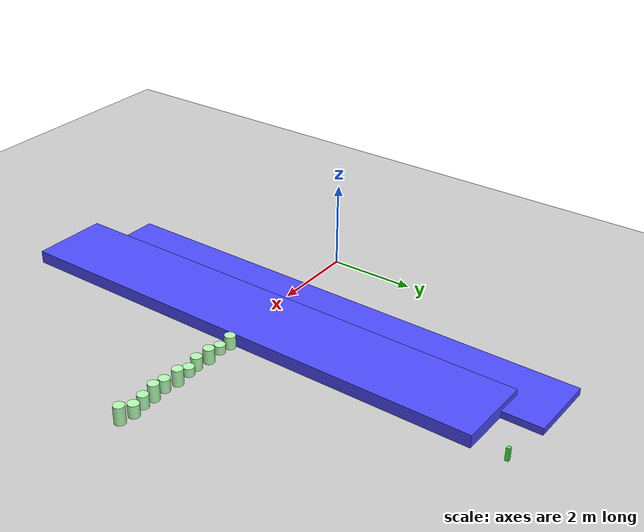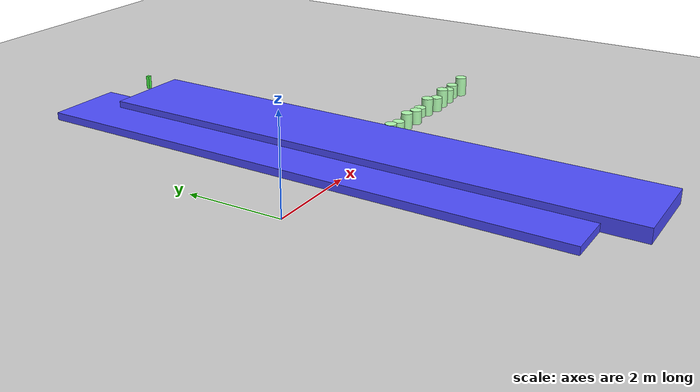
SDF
<sdf version="1.7">
 <world name="default">
  <model name="ground_plane">
   <static>1</static>
   <link name="link">
    <collision name="collision">
     <geometry><plane><normal>0 0 1</normal><size>100 100</size></plane></geometry>
     <surface><friction><ode><mu>100</mu><mu2>50</mu2></ode></friction></surface>
    </collision>
    <visual name="visual">
     <cast_shadows>0</cast_shadows>
     <geometry><plane><normal>0 0 1</normal><size>100 100</size></plane></geometry>
     <material>
      <script><uri>file://media/materials/scripts/gazebo.material</uri><name>Gazebo/Grey</name></script>
     </material>
    </visual>
   </link>
  </model>
  <model name="ban_400_80_30_clone_clone">
   <link name="link">
    <inertial>
     <mass>1</mass>
     <inertia>
      <ixx>0.166667</ixx>
      <ixy>0</ixy>
      <ixz>0</ixz>
      <iyy>0.166667</iyy>
      <iyz>0</iyz>
      <izz>0.166667</izz>
     </inertia>
    </inertial>
    <visual name="visual">
     <geometry><box><size>11.703 1.83242 0.3</size></box></geometry>
     <material>
      <script><name>Gazebo/Grey</name><uri>file://media/materials/scripts/gazebo.material</uri></script>
      <shader type="pixel"><normal_map>__default__</normal_map></shader>
      <ambient>0.3 0.3 1 1</ambient>
      <diffuse>0.7 0.7 0.7 1</diffuse>
      <specular>0.01 0.01 0.01 1</specular>
      <emissive>0 0 0 1</emissive>
     </material>
    </visual>
    <collision name="collision">
     <geometry><box><size>11.703 1.83242 0.3</size></box></geometry>
     <surface>
      <friction>
       <ode><mu>1</mu><mu2>1</mu2><fdir1>0 0 0</fdir1><slip1>0</slip1><slip2>0</slip2></ode>
       <torsional>
        <coefficient>1</coefficient>
        <patch_radius>0</patch_radius>
        <surface_radius>0</surface_radius>
        <use_patch_radius>1</use_patch_radius>
        <ode><slip>0</slip></ode>
       </torsional>
      </friction>
      <bounce><restitution_coefficient>0</restitution_coefficient><threshold>1e+06</threshold></bounce>
      <contact>
       <collide_without_contact>0</collide_without_contact>
       <collide_without_contact_bitmask>1</collide_without_contact_bitmask>
       <collide_bitmask>1</collide_bitmask>
       <ode>
        <soft_cfm>0</soft_cfm>
        <soft_erp>0.2</soft_erp>
        <kp>1e+13</kp>
        <kd>1</kd>
        <max_vel>0.01</max_vel>
        <min_depth>0</min_depth>
       </ode>
       <bullet>
        <split_impulse>1</split_impulse>
        <split_impulse_penetration_threshold>-0.01</split_impulse_penetration_threshold>
        <soft_cfm>0</soft_cfm>
        <soft_erp>0.2</soft_erp>
        <kp>1e+13</kp>
        <kd>1</kd>
       </bullet>
      </contact>
     </surface>
    </collision>
   </link>
   <static>1</static>
   <pose>3.376 0.164957 0.141155 0 -0 1.55763</pose>
  </model>
  <model name="mhz_8_30_clone">
   <link name="link">
    <inertial>
     <mass>1</mass>
     <inertia>
      <ixx>0.166667</ixx>
      <ixy>0</ixy>
      <ixz>0</ixz>
      <iyy>0.166667</iyy>
      <iyz>0</iyz>
      <izz>0.166667</izz>
     </inertia>
    </inertial>
    <visual name="visual">
     <geometry><box><size>0.08 0.08 0.3</size></box></geometry>
     <material>
      <script><name>Gazebo/Grey</name><uri>file://media/materials/scripts/gazebo.material</uri></script>
      <shader type="pixel"><normal_map>__default__</normal_map></shader>
      <ambient>0.3 1 0.3 1</ambient>
      <diffuse>0.7 0.7 0.7 1</diffuse>
      <specular>0.01 0.01 0.01 1</specular>
      <emissive>0 0 0 1</emissive>
     </material>
    </visual>
    <collision name="collision">
     <geometry><box><size>0.08 0.08 0.3</size></box></geometry>
     <surface>
      <friction>
       <ode><mu>1</mu><mu2>1</mu2><fdir1>0 0 0</fdir1><slip1>0</slip1><slip2>0</slip2></ode>
       <torsional>
        <coefficient>1</coefficient>
        <patch_radius>0</patch_radius>
        <surface_radius>0</surface_radius>
        <use_patch_radius>1</use_patch_radius>
        <ode><slip>0</slip></ode>
       </torsional>
      </friction>
      <bounce><restitution_coefficient>0</restitution_coefficient><threshold>1e+06</threshold></bounce>
      <contact>
       <collide_without_contact>0</collide_without_contact>
       <collide_without_contact_bitmask>1</collide_without_contact_bitmask>
       <collide_bitmask>1</collide_bitmask>
       <ode>
        <soft_cfm>0</soft_cfm>
        <soft_erp>0.2</soft_erp>
        <kp>1e+13</kp>
        <kd>1</kd>
        <max_vel>0.01</max_vel>
        <min_depth>0</min_depth>
       </ode>
       <bullet>
        <split_impulse>1</split_impulse>
        <split_impulse_penetration_threshold>-0.01</split_impulse_penetration_threshold>
        <soft_cfm>0</soft_cfm>
        <soft_erp>0.2</soft_erp>
        <kp>1e+13</kp>
        <kd>1</kd>
       </bullet>
      </contact>
     </surface>
    </collision>
   </link>
   <static>1</static>
   <pose>4.25594 6.71166 0.134436 0 -0 0</pose>
  </model>
  <model name="mhz_y_25_30_clone_13_clone_clone_9_clone">
   <link name="link">
    <inertial>
     <mass>1</mass>
     <inertia><ixx>0.145833</ixx><ixy>0</ixy><ixz>0</ixz><iyy>0.145833</iyy><iyz>0</iyz><izz>0.125</izz></inertia>
    </inertial>
    <visual name="visual">
     <geometry><cylinder><radius>0.125</radius><length>0.3</length></cylinder></geometry>
     <material>
      <script><name>Gazebo/Grey</name><uri>file://media/materials/scripts/gazebo.material</uri></script>
      <shader type="pixel"><normal_map>__default__</normal_map></shader>
      <ambient>0 1 0 0</ambient>
      <diffuse>0.7 1 0.7 1</diffuse>
      <specular>0.01 0.01 0.01 1</specular>
      <emissive>0 0 0 1</emissive>
     </material>
    </visual>
    <collision name="collision">
     <geometry><cylinder><radius>0.125</radius><length>0.3</length></cylinder></geometry>
     <surface>
      <friction>
       <ode><mu>1</mu><mu2>1</mu2><fdir1>0 0 0</fdir1><slip1>0</slip1><slip2>0</slip2></ode>
       <torsional>
        <coefficient>1</coefficient>
        <patch_radius>0</patch_radius>
        <surface_radius>0</surface_radius>
        <use_patch_radius>1</use_patch_radius>
        <ode><slip>0</slip></ode>
       </torsional>
      </friction>
      <bounce><restitution_coefficient>0</restitution_coefficient><threshold>1e+06</threshold></bounce>
      <contact>
       <collide_without_contact>0</collide_without_contact>
       <collide_without_contact_bitmask>1</collide_without_contact_bitmask>
       <collide_bitmask>1</collide_bitmask>
       <ode>
        <soft_cfm>0</soft_cfm>
        <soft_erp>0.2</soft_erp>
        <kp>1e+13</kp>
        <kd>1</kd>
        <max_vel>0.01</max_vel>
        <min_depth>0</min_depth>
       </ode>
       <bullet>
        <split_impulse>1</split_impulse>
        <split_impulse_penetration_threshold>-0.01</split_impulse_penetration_threshold>
        <soft_cfm>0</soft_cfm>
        <soft_erp>0.2</soft_erp>
        <kp>1e+13</kp>
        <kd>1</kd>
       </bullet>
      </contact>
     </surface>
    </collision>
   </link>
   <static>1</static>
   <pose>4.3916 0.246906 0.14679 0 -0 0</pose>
  </model>
  <model name="mhz_y_25_30_clone_13_clone_clone_9_clone_2">
   <link name="link">
    <inertial>
     <mass>1</mass>
     <inertia><ixx>0.145833</ixx><ixy>0</ixy><ixz>0</ixz><iyy>0.145833</iyy><iyz>0</iyz><izz>0.125</izz></inertia>
    </inertial>
    <visual name="visual">
     <geometry><cylinder><radius>0.125</radius><length>0.195258</length></cylinder></geometry>
     <material>
      <script><name>Gazebo/Grey</name><uri>file://media/materials/scripts/gazebo.material</uri></script>
      <shader type="pixel"><normal_map>__default__</normal_map></shader>
      <ambient>0 1 0 0</ambient>
      <diffuse>0.7 1 0.7 1</diffuse>
      <specular>0.01 0.01 0.01 1</specular>
      <emissive>0 0 0 1</emissive>
     </material>
    </visual>
    <collision name="collision">
     <geometry><cylinder><radius>0.125</radius><length>0.195258</length></cylinder></geometry>
     <surface>
      <friction>
       <ode><mu>1</mu><mu2>1</mu2><fdir1>0 0 0</fdir1><slip1>0</slip1><slip2>0</slip2></ode>
       <torsional>
        <coefficient>1</coefficient>
        <patch_radius>0</patch_radius>
        <surface_radius>0</surface_radius>
        <use_patch_radius>1</use_patch_radius>
        <ode><slip>0</slip></ode>
       </torsional>
      </friction>
      <bounce><restitution_coefficient>0</restitution_coefficient><threshold>1e+06</threshold></bounce>
      <contact>
       <collide_without_contact>0</collide_without_contact>
       <collide_without_contact_bitmask>1</collide_without_contact_bitmask>
       <collide_bitmask>1</collide_bitmask>
       <ode>
        <soft_cfm>0</soft_cfm>
        <soft_erp>0.2</soft_erp>
        <kp>1e+13</kp>
        <kd>1</kd>
        <max_vel>0.01</max_vel>
        <min_depth>0</min_depth>
       </ode>
       <bullet>
        <split_impulse>1</split_impulse>
        <split_impulse_penetration_threshold>-0.01</split_impulse_penetration_threshold>
        <soft_cfm>0</soft_cfm>
        <soft_erp>0.2</soft_erp>
        <kp>1e+13</kp>
        <kd>1</kd>
       </bullet>
      </contact>
     </surface>
    </collision>
   </link>
   <static>1</static>
   <pose>4.72896 0.241123 0.14679 0 -0 0</pose>
  </model>
  <model name="mhz_y_25_30_clone_13_clone_clone_9_clone_4">
   <link name="link">
    <inertial>
     <mass>1</mass>
     <inertia><ixx>0.145833</ixx><ixy>0</ixy><ixz>0</ixz><iyy>0.145833</iyy><iyz>0</iyz><izz>0.125</izz></inertia>
    </inertial>
    <visual name="visual">
     <geometry><cylinder><radius>0.125</radius><length>0.368013</length></cylinder></geometry>
     <material>
      <script><name>Gazebo/Grey</name><uri>file://media/materials/scripts/gazebo.material</uri></script>
      <shader type="pixel"><normal_map>__default__</normal_map></shader>
      <ambient>0 1 0 0</ambient>
      <diffuse>0.7 1 0.7 1</diffuse>
      <specular>0.01 0.01 0.01 1</specular>
      <emissive>0 0 0 1</emissive>
     </material>
    </visual>
    <collision name="collision">
     <geometry><cylinder><radius>0.125</radius><length>0.368013</length></cylinder></geometry>
     <surface>
      <friction>
       <ode><mu>1</mu><mu2>1</mu2><fdir1>0 0 0</fdir1><slip1>0</slip1><slip2>0</slip2></ode>
       <torsional>
        <coefficient>1</coefficient>
        <patch_radius>0</patch_radius>
        <surface_radius>0</surface_radius>
        <use_patch_radius>1</use_patch_radius>
        <ode><slip>0</slip></ode>
       </torsional>
      </friction>
      <bounce><restitution_coefficient>0</restitution_coefficient><threshold>1e+06</threshold></bounce>
      <contact>
       <collide_without_contact>0</collide_without_contact>
       <collide_without_contact_bitmask>1</collide_without_contact_bitmask>
       <collide_bitmask>1</collide_bitmask>
       <ode>
        <soft_cfm>0</soft_cfm>
        <soft_erp>0.2</soft_erp>
        <kp>1e+13</kp>
        <kd>1</kd>
        <max_vel>0.01</max_vel>
        <min_depth>0</min_depth>
       </ode>
       <bullet>
        <split_impulse>1</split_impulse>
        <split_impulse_penetration_threshold>-0.01</split_impulse_penetration_threshold>
        <soft_cfm>0</soft_cfm>
        <soft_erp>0.2</soft_erp>
        <kp>1e+13</kp>
        <kd>1</kd>
       </bullet>
      </contact>
     </surface>
    </collision>
   </link>
   <static>1</static>
   <pose>5.07114 0.228722 0.14679 0 -0 0</pose>
  </model>
  <model name="mhz_y_25_30_clone_13_clone_clone_9_clone_6">
   <link name="link">
    <inertial>
     <mass>1</mass>
     <inertia><ixx>0.145833</ixx><ixy>0</ixy><ixz>0</ixz><iyy>0.145833</iyy><iyz>0</iyz><izz>0.125</izz></inertia>
    </inertial>
    <visual name="visual">
     <geometry><cylinder><radius>0.125</radius><length>0.3</length></cylinder></geometry>
     <material>
      <script><name>Gazebo/Grey</name><uri>file://media/materials/scripts/gazebo.material</uri></script>
      <shader type="pixel"><normal_map>__default__</normal_map></shader>
      <ambient>0 1 0 0</ambient>
      <diffuse>0.7 1 0.7 1</diffuse>
      <specular>0.01 0.01 0.01 1</specular>
      <emissive>0 0 0 1</emissive>
     </material>
    </visual>
    <collision name="collision">
     <geometry><cylinder><radius>0.125</radius><length>0.3</length></cylinder></geometry>
     <surface>
      <friction>
       <ode><mu>1</mu><mu2>1</mu2><fdir1>0 0 0</fdir1><slip1>0</slip1><slip2>0</slip2></ode>
       <torsional>
        <coefficient>1</coefficient>
        <patch_radius>0</patch_radius>
        <surface_radius>0</surface_radius>
        <use_patch_radius>1</use_patch_radius>
        <ode><slip>0</slip></ode>
       </torsional>
      </friction>
      <bounce><restitution_coefficient>0</restitution_coefficient><threshold>1e+06</threshold></bounce>
      <contact>
       <collide_without_contact>0</collide_without_contact>
       <collide_without_contact_bitmask>1</collide_without_contact_bitmask>
       <collide_bitmask>1</collide_bitmask>
       <ode>
        <soft_cfm>0</soft_cfm>
        <soft_erp>0.2</soft_erp>
        <kp>1e+13</kp>
        <kd>1</kd>
        <max_vel>0.01</max_vel>
        <min_depth>0</min_depth>
       </ode>
       <bullet>
        <split_impulse>1</split_impulse>
        <split_impulse_penetration_threshold>-0.01</split_impulse_penetration_threshold>
        <soft_cfm>0</soft_cfm>
        <soft_erp>0.2</soft_erp>
        <kp>1e+13</kp>
        <kd>1</kd>
       </bullet>
      </contact>
     </surface>
    </collision>
   </link>
   <static>1</static>
   <pose>5.41557 0.185611 0.14679 0 -0 0</pose>
  </model>
  <model name="mhz_y_25_30_clone_13_clone_clone_9_clone_8">
   <link name="link">
    <inertial>
     <mass>1</mass>
     <inertia><ixx>0.145833</ixx><ixy>0</ixy><ixz>0</ixz><iyy>0.145833</iyy><iyz>0</iyz><izz>0.125</izz></inertia>
    </inertial>
    <visual name="visual">
     <geometry><cylinder><radius>0.125</radius><length>0.197088</length></cylinder></geometry>
     <material>
      <script><name>Gazebo/Grey</name><uri>file://media/materials/scripts/gazebo.material</uri></script>
      <shader type="pixel"><normal_map>__default__</normal_map></shader>
      <ambient>0 1 0 0</ambient>
      <diffuse>0.7 1 0.7 1</diffuse>
      <specular>0.01 0.01 0.01 1</specular>
      <emissive>0 0 0 1</emissive>
     </material>
    </visual>
    <collision name="collision">
     <geometry><cylinder><radius>0.125</radius><length>0.197088</length></cylinder></geometry>
     <surface>
      <friction>
       <ode><mu>1</mu><mu2>1</mu2><fdir1>0 0 0</fdir1><slip1>0</slip1><slip2>0</slip2></ode>
       <torsional>
        <coefficient>1</coefficient>
        <patch_radius>0</patch_radius>
        <surface_radius>0</surface_radius>
        <use_patch_radius>1</use_patch_radius>
        <ode><slip>0</slip></ode>
       </torsional>
      </friction>
      <bounce><restitution_coefficient>0</restitution_coefficient><threshold>1e+06</threshold></bounce>
      <contact>
       <collide_without_contact>0</collide_without_contact>
       <collide_without_contact_bitmask>1</collide_without_contact_bitmask>
       <collide_bitmask>1</collide_bitmask>
       <ode>
        <soft_cfm>0</soft_cfm>
        <soft_erp>0.2</soft_erp>
        <kp>1e+13</kp>
        <kd>1</kd>
        <max_vel>0.01</max_vel>
        <min_depth>0</min_depth>
       </ode>
       <bullet>
        <split_impulse>1</split_impulse>
        <split_impulse_penetration_threshold>-0.01</split_impulse_penetration_threshold>
        <soft_cfm>0</soft_cfm>
        <soft_erp>0.2</soft_erp>
        <kp>1e+13</kp>
        <kd>1</kd>
       </bullet>
      </contact>
     </surface>
    </collision>
   </link>
   <static>1</static>
   <pose>5.73237 0.24844 0.14679 0 -0 0</pose>
  </model>
  <model name="mhz_y_25_30_clone_13_clone_clone_9_clone_10">
   <link name="link">
    <inertial>
     <mass>1</mass>
     <inertia><ixx>0.145833</ixx><ixy>0</ixy><ixz>0</ixz><iyy>0.145833</iyy><iyz>0</iyz><izz>0.125</izz></inertia>
    </inertial>
    <visual name="visual">
     <geometry><cylinder><radius>0.125</radius><length>0.436392</length></cylinder></geometry>
     <material>
      <script><name>Gazebo/Grey</name><uri>file://media/materials/scripts/gazebo.material</uri></script>
      <shader type="pixel"><normal_map>__default__</normal_map></shader>
      <ambient>0 1 0 0</ambient>
      <diffuse>0.7 1 0.7 1</diffuse>
      <specular>0.01 0.01 0.01 1</specular>
      <emissive>0 0 0 1</emissive>
     </material>
    </visual>
    <collision name="collision">
     <geometry><cylinder><radius>0.125</radius><length>0.436392</length></cylinder></geometry>
     <surface>
      <friction>
       <ode><mu>1</mu><mu2>1</mu2><fdir1>0 0 0</fdir1><slip1>0</slip1><slip2>0</slip2></ode>
       <torsional>
        <coefficient>1</coefficient>
        <patch_radius>0</patch_radius>
        <surface_radius>0</surface_radius>
        <use_patch_radius>1</use_patch_radius>
        <ode><slip>0</slip></ode>
       </torsional>
      </friction>
      <bounce><restitution_coefficient>0</restitution_coefficient><threshold>1e+06</threshold></bounce>
      <contact>
       <collide_without_contact>0</collide_without_contact>
       <collide_without_contact_bitmask>1</collide_without_contact_bitmask>
       <collide_bitmask>1</collide_bitmask>
       <ode>
        <soft_cfm>0</soft_cfm>
        <soft_erp>0.2</soft_erp>
        <kp>1e+13</kp>
        <kd>1</kd>
        <max_vel>0.01</max_vel>
        <min_depth>0</min_depth>
       </ode>
       <bullet>
        <split_impulse>1</split_impulse>
        <split_impulse_penetration_threshold>-0.01</split_impulse_penetration_threshold>
        <soft_cfm>0</soft_cfm>
        <soft_erp>0.2</soft_erp>
        <kp>1e+13</kp>
        <kd>1</kd>
       </bullet>
      </contact>
     </surface>
    </collision>
   </link>
   <static>1</static>
   <pose>6.05527 0.231921 0.14679 0 -0 0</pose>
  </model>
  <model name="mhz_y_25_30_clone_13_clone_clone_9_clone_9_clone_0">
   <link name="link">
    <inertial>
     <mass>1</mass>
     <inertia><ixx>0.145833</ixx><ixy>0</ixy><ixz>0</ixz><iyy>0.145833</iyy><iyz>0</iyz><izz>0.125</izz></inertia>
    </inertial>
    <visual name="visual">
     <geometry><cylinder><radius>0.125</radius><length>0.3</length></cylinder></geometry>
     <material>
      <script><name>Gazebo/Grey</name><uri>file://media/materials/scripts/gazebo.material</uri></script>
      <shader type="pixel"><normal_map>__default__</normal_map></shader>
      <ambient>0 1 0 0</ambient>
      <diffuse>0.7 1 0.7 1</diffuse>
      <specular>0.01 0.01 0.01 1</specular>
      <emissive>0 0 0 1</emissive>
     </material>
    </visual>
    <collision name="collision">
     <geometry><cylinder><radius>0.125</radius><length>0.3</length></cylinder></geometry>
     <surface>
      <friction>
       <ode><mu>1</mu><mu2>1</mu2><fdir1>0 0 0</fdir1><slip1>0</slip1><slip2>0</slip2></ode>
       <torsional>
        <coefficient>1</coefficient>
        <patch_radius>0</patch_radius>
        <surface_radius>0</surface_radius>
        <use_patch_radius>1</use_patch_radius>
        <ode><slip>0</slip></ode>
       </torsional>
      </friction>
      <bounce><restitution_coefficient>0</restitution_coefficient><threshold>1e+06</threshold></bounce>
      <contact>
       <collide_without_contact>0</collide_without_contact>
       <collide_without_contact_bitmask>1</collide_without_contact_bitmask>
       <collide_bitmask>1</collide_bitmask>
       <ode>
        <soft_cfm>0</soft_cfm>
        <soft_erp>0.2</soft_erp>
        <kp>1e+13</kp>
        <kd>1</kd>
        <max_vel>0.01</max_vel>
        <min_depth>0</min_depth>
       </ode>
       <bullet>
        <split_impulse>1</split_impulse>
        <split_impulse_penetration_threshold>-0.01</split_impulse_penetration_threshold>
        <soft_cfm>0</soft_cfm>
        <soft_erp>0.2</soft_erp>
        <kp>1e+13</kp>
        <kd>1</kd>
       </bullet>
      </contact>
     </surface>
    </collision>
   </link>
   <static>1</static>
   <pose>6.39265 0.172598 0.14679 0 -0 0</pose>
  </model>
  <model name="mhz_y_25_30_clone_13_clone_clone_9_clone_9_clone_2">
   <link name="link">
    <inertial>
     <mass>1</mass>
     <inertia><ixx>0.145833</ixx><ixy>0</ixy><ixz>0</ixz><iyy>0.145833</iyy><iyz>0</iyz><izz>0.125</izz></inertia>
    </inertial>
    <visual name="visual">
     <geometry><cylinder><radius>0.125</radius><length>0.469773</length></cylinder></geometry>
     <material>
      <script><name>Gazebo/Grey</name><uri>file://media/materials/scripts/gazebo.material</uri></script>
      <shader type="pixel"><normal_map>__default__</normal_map></shader>
      <ambient>0 1 0 0</ambient>
      <diffuse>0.7 1 0.7 1</diffuse>
      <specular>0.01 0.01 0.01 1</specular>
      <emissive>0 0 0 1</emissive>
     </material>
    </visual>
    <collision name="collision">
     <geometry><cylinder><radius>0.125</radius><length>0.469773</length></cylinder></geometry>
     <surface>
      <friction>
       <ode><mu>1</mu><mu2>1</mu2><fdir1>0 0 0</fdir1><slip1>0</slip1><slip2>0</slip2></ode>
       <torsional>
        <coefficient>1</coefficient>
        <patch_radius>0</patch_radius>
        <surface_radius>0</surface_radius>
        <use_patch_radius>1</use_patch_radius>
        <ode><slip>0</slip></ode>
       </torsional>
      </friction>
      <bounce><restitution_coefficient>0</restitution_coefficient><threshold>1e+06</threshold></bounce>
      <contact>
       <collide_without_contact>0</collide_without_contact>
       <collide_without_contact_bitmask>1</collide_without_contact_bitmask>
       <collide_bitmask>1</collide_bitmask>
       <ode>
        <soft_cfm>0</soft_cfm>
        <soft_erp>0.2</soft_erp>
        <kp>1e+13</kp>
        <kd>1</kd>
        <max_vel>0.01</max_vel>
        <min_depth>0</min_depth>
       </ode>
       <bullet>
        <split_impulse>1</split_impulse>
        <split_impulse_penetration_threshold>-0.01</split_impulse_penetration_threshold>
        <soft_cfm>0</soft_cfm>
        <soft_erp>0.2</soft_erp>
        <kp>1e+13</kp>
        <kd>1</kd>
       </bullet>
      </contact>
     </surface>
    </collision>
   </link>
   <static>1</static>
   <pose>6.73703 0.199608 0.14679 0 -0 0</pose>
  </model>
  <model name="mhz_y_25_30_clone_13_clone_clone_9_clone_9_clone_4">
   <link name="link">
    <inertial>
     <mass>1</mass>
     <inertia><ixx>0.145833</ixx><ixy>0</ixy><ixz>0</ixz><iyy>0.145833</iyy><iyz>0</iyz><izz>0.125</izz></inertia>
    </inertial>
    <visual name="visual">
     <geometry><cylinder><radius>0.125</radius><length>0.3</length></cylinder></geometry>
     <material>
      <script><name>Gazebo/Grey</name><uri>file://media/materials/scripts/gazebo.material</uri></script>
      <shader type="pixel"><normal_map>__default__</normal_map></shader>
      <ambient>0 1 0 0</ambient>
      <diffuse>0.7 1 0.7 1</diffuse>
      <specular>0.01 0.01 0.01 1</specular>
      <emissive>0 0 0 1</emissive>
     </material>
    </visual>
    <collision name="collision">
     <geometry><cylinder><radius>0.125</radius><length>0.3</length></cylinder></geometry>
     <surface>
      <friction>
       <ode><mu>1</mu><mu2>1</mu2><fdir1>0 0 0</fdir1><slip1>0</slip1><slip2>0</slip2></ode>
       <torsional>
        <coefficient>1</coefficient>
        <patch_radius>0</patch_radius>
        <surface_radius>0</surface_radius>
        <use_patch_radius>1</use_patch_radius>
        <ode><slip>0</slip></ode>
       </torsional>
      </friction>
      <bounce><restitution_coefficient>0</restitution_coefficient><threshold>1e+06</threshold></bounce>
      <contact>
       <collide_without_contact>0</collide_without_contact>
       <collide_without_contact_bitmask>1</collide_without_contact_bitmask>
       <collide_bitmask>1</collide_bitmask>
       <ode>
        <soft_cfm>0</soft_cfm>
        <soft_erp>0.2</soft_erp>
        <kp>1e+13</kp>
        <kd>1</kd>
        <max_vel>0.01</max_vel>
        <min_depth>0</min_depth>
       </ode>
       <bullet>
        <split_impulse>1</split_impulse>
        <split_impulse_penetration_threshold>-0.01</split_impulse_penetration_threshold>
        <soft_cfm>0</soft_cfm>
        <soft_erp>0.2</soft_erp>
        <kp>1e+13</kp>
        <kd>1</kd>
       </bullet>
      </contact>
     </surface>
    </collision>
   </link>
   <static>1</static>
   <pose>7.04809 0.197729 0.14679 0 -0 0</pose>
  </model>
  <model name="mhz_y_25_30_clone_13_clone_clone_9_clone_9_clone_6">
   <link name="link">
    <inertial>
     <mass>1</mass>
     <inertia><ixx>0.145833</ixx><ixy>0</ixy><ixz>0</ixz><iyy>0.145833</iyy><iyz>0</iyz><izz>0.125</izz></inertia>
    </inertial>
    <visual name="visual">
     <geometry><cylinder><radius>0.125</radius><length>0.3</length></cylinder></geometry>
     <material>
      <script><name>Gazebo/Grey</name><uri>file://media/materials/scripts/gazebo.material</uri></script>
      <shader type="pixel"><normal_map>__default__</normal_map></shader>
      <ambient>0 1 0 0</ambient>
      <diffuse>0.7 1 0.7 1</diffuse>
      <specular>0.01 0.01 0.01 1</specular>
      <emissive>0 0 0 1</emissive>
     </material>
    </visual>
    <collision name="collision">
     <geometry><cylinder><radius>0.125</radius><length>0.3</length></cylinder></geometry>
     <surface>
      <friction>
       <ode><mu>1</mu><mu2>1</mu2><fdir1>0 0 0</fdir1><slip1>0</slip1><slip2>0</slip2></ode>
       <torsional>
        <coefficient>1</coefficient>
        <patch_radius>0</patch_radius>
        <surface_radius>0</surface_radius>
        <use_patch_radius>1</use_patch_radius>
        <ode><slip>0</slip></ode>
       </torsional>
      </friction>
      <bounce><restitution_coefficient>0</restitution_coefficient><threshold>1e+06</threshold></bounce>
      <contact>
       <collide_without_contact>0</collide_without_contact>
       <collide_without_contact_bitmask>1</collide_without_contact_bitmask>
       <collide_bitmask>1</collide_bitmask>
       <ode>
        <soft_cfm>0</soft_cfm>
        <soft_erp>0.2</soft_erp>
        <kp>1e+13</kp>
        <kd>1</kd>
        <max_vel>0.01</max_vel>
        <min_depth>0</min_depth>
       </ode>
       <bullet>
        <split_impulse>1</split_impulse>
        <split_impulse_penetration_threshold>-0.01</split_impulse_penetration_threshold>
        <soft_cfm>0</soft_cfm>
        <soft_erp>0.2</soft_erp>
        <kp>1e+13</kp>
        <kd>1</kd>
       </bullet>
      </contact>
     </surface>
    </collision>
   </link>
   <static>1</static>
   <pose>7.3749 0.253698 0.14679 0 -0 0</pose>
  </model>
  <model name="mhz_y_25_30_clone_13_clone_clone_9_clone_9_clone_8">
   <link name="link">
    <inertial>
     <mass>1</mass>
     <inertia><ixx>0.145833</ixx><ixy>0</ixy><ixz>0</ixz><iyy>0.145833</iyy><iyz>0</iyz><izz>0.125</izz></inertia>
    </inertial>
    <visual name="visual">
     <geometry><cylinder><radius>0.125</radius><length>0.514062</length></cylinder></geometry>
     <material>
      <script><name>Gazebo/Grey</name><uri>file://media/materials/scripts/gazebo.material</uri></script>
      <shader type="pixel"><normal_map>__default__</normal_map></shader>
      <ambient>0 1 0 0</ambient>
      <diffuse>0.7 1 0.7 1</diffuse>
      <specular>0.01 0.01 0.01 1</specular>
      <emissive>0 0 0 1</emissive>
     </material>
    </visual>
    <collision name="collision">
     <geometry><cylinder><radius>0.125</radius><length>0.514062</length></cylinder></geometry>
     <surface>
      <friction>
       <ode><mu>1</mu><mu2>1</mu2><fdir1>0 0 0</fdir1><slip1>0</slip1><slip2>0</slip2></ode>
       <torsional>
        <coefficient>1</coefficient>
        <patch_radius>0</patch_radius>
        <surface_radius>0</surface_radius>
        <use_patch_radius>1</use_patch_radius>
        <ode><slip>0</slip></ode>
       </torsional>
      </friction>
      <bounce><restitution_coefficient>0</restitution_coefficient><threshold>1e+06</threshold></bounce>
      <contact>
       <collide_without_contact>0</collide_without_contact>
       <collide_without_contact_bitmask>1</collide_without_contact_bitmask>
       <collide_bitmask>1</collide_bitmask>
       <ode>
        <soft_cfm>0</soft_cfm>
        <soft_erp>0.2</soft_erp>
        <kp>1e+13</kp>
        <kd>1</kd>
        <max_vel>0.01</max_vel>
        <min_depth>0</min_depth>
       </ode>
       <bullet>
        <split_impulse>1</split_impulse>
        <split_impulse_penetration_threshold>-0.01</split_impulse_penetration_threshold>
        <soft_cfm>0</soft_cfm>
        <soft_erp>0.2</soft_erp>
        <kp>1e+13</kp>
        <kd>1</kd>
       </bullet>
      </contact>
     </surface>
    </collision>
   </link>
   <static>1</static>
   <pose>7.68595 0.176586 0.14679 0 -0 0</pose>
  </model>
  <model name="ban_400_80_30_clone_clone_0">
   <link name="link">
    <inertial>
     <mass>1</mass>
     <inertia>
      <ixx>0.166667</ixx>
      <ixy>0</ixy>
      <ixz>0</ixz>
      <iyy>0.166667</iyy>
      <iyz>0</iyz>
      <izz>0.166667</izz>
     </inertia>
    </inertial>
    <visual name="visual">
     <geometry><box><size>11.7457 1.62875 0.3</size></box></geometry>
     <material>
      <script><name>Gazebo/Grey</name><uri>file://media/materials/scripts/gazebo.material</uri></script>
      <shader type="pixel"><normal_map>__default__</normal_map></shader>
      <ambient>0.3 0.3 1 1</ambient>
      <diffuse>0.7 0.7 0.7 1</diffuse>
      <specular>0.01 0.01 0.01 1</specular>
      <emissive>0 0 0 1</emissive>
     </material>
    </visual>
    <collision name="collision">
     <geometry><box><size>11.7457 1.62875 0.3</size></box></geometry>
     <surface>
      <friction>
       <ode><mu>1</mu><mu2>1</mu2><fdir1>0 0 0</fdir1><slip1>0</slip1><slip2>0</slip2></ode>
       <torsional>
        <coefficient>1</coefficient>
        <patch_radius>0</patch_radius>
        <surface_radius>0</surface_radius>
        <use_patch_radius>1</use_patch_radius>
        <ode><slip>0</slip></ode>
       </torsional>
      </friction>
      <bounce><restitution_coefficient>0</restitution_coefficient><threshold>1e+06</threshold></bounce>
      <contact>
       <collide_without_contact>0</collide_without_contact>
       <collide_without_contact_bitmask>1</collide_without_contact_bitmask>
       <collide_bitmask>1</collide_bitmask>
       <ode>
        <soft_cfm>0</soft_cfm>
        <soft_erp>0.2</soft_erp>
        <kp>1e+13</kp>
        <kd>1</kd>
        <max_vel>0.01</max_vel>
        <min_depth>0</min_depth>
       </ode>
       <bullet>
        <split_impulse>1</split_impulse>
        <split_impulse_penetration_threshold>-0.01</split_impulse_penetration_threshold>
        <soft_cfm>0</soft_cfm>
        <soft_erp>0.2</soft_erp>
        <kp>1e+13</kp>
        <kd>1</kd>
       </bullet>
      </contact>
     </surface>
    </collision>
   </link>
   <static>1</static>
   <pose>2.30634 1.06906 0 0 -0 1.55763</pose>
  </model>
 </world>
</sdf>
